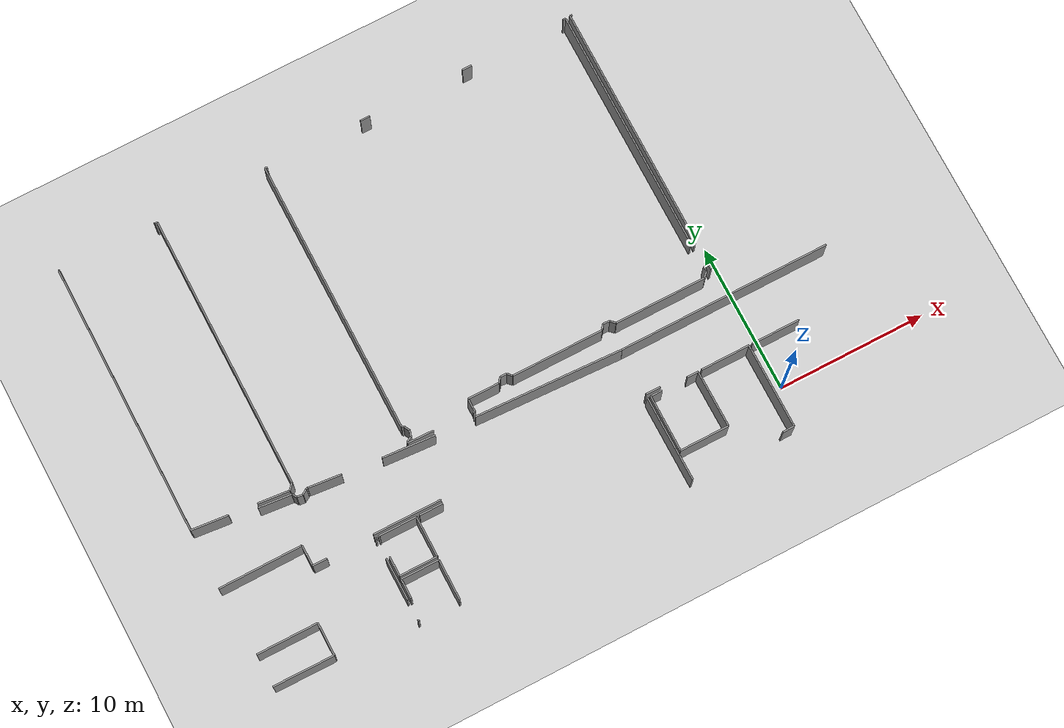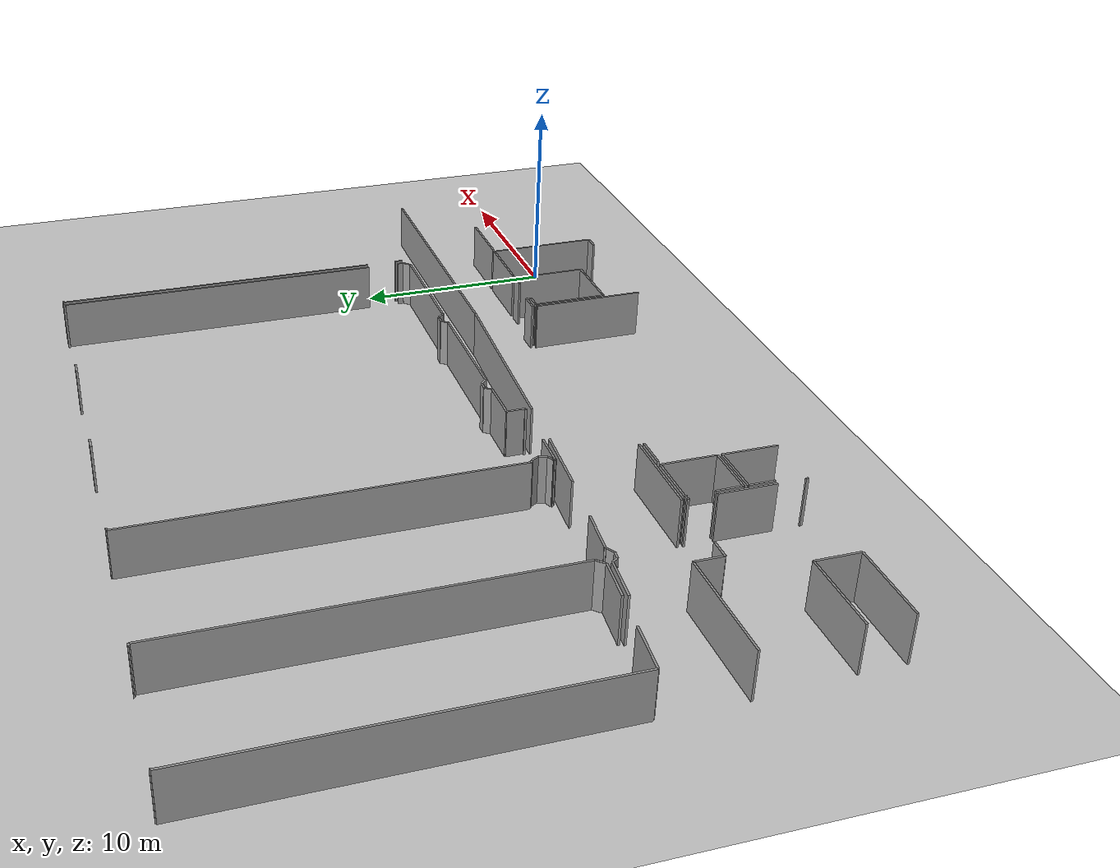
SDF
<sdf version="1.6">
 <world name="default">
  <model name="ground_plane">
   <static>1</static>
   <link name="link">
    <collision name="collision">
     <geometry><plane><normal>0 0 1</normal><size>100 100</size></plane></geometry>
     <surface><friction><ode><mu>100</mu><mu2>50</mu2></ode></friction></surface>
    </collision>
    <visual name="visual">
     <cast_shadows>0</cast_shadows>
     <geometry><plane><normal>0 0 1</normal><size>100 100</size></plane></geometry>
     <material>
      <script><uri>file://media/materials/scripts/gazebo.material</uri><name>Gazebo/Grey</name></script>
     </material>
    </visual>
   </link>
  </model>
  <model name="50041170">
   <static>1</static>
   <link name="Wall_58">
    <collision name="Wall_58_Collision">
     <geometry><box><size>2.21725746565 0.1 2.5</size></box></geometry>
     <pose>1.10862873282 0 1.25 0 0 0</pose>
    </collision>
    <visual name="Wall_58_Visual">
     <pose>1.10862873282 0 1.25 0 0 0</pose>
     <geometry><box><size>2.21725746565 0.1 2.5</size></box></geometry>
     <material>
      <script><uri>file://media/materials/scripts/gazebo.material</uri><name>Gazebo/Grey</name></script>
      <ambient>1 1 1 1</ambient>
     </material>
    </visual>
    <pose>34.1700358605 -29.3304560312 0 0 0 1.57079632679</pose>
   </link>
   <link name="Wall_59">
    <collision name="Wall_59_Collision">
     <geometry><box><size>4.13925295928 0.1 2.5</size></box></geometry>
     <pose>2.06962647964 0 1.25 0 0 0</pose>
    </collision>
    <visual name="Wall_59_Visual">
     <pose>2.06962647964 0 1.25 0 0 0</pose>
     <geometry><box><size>4.13925295928 0.1 2.5</size></box></geometry>
     <material>
      <script><uri>file://media/materials/scripts/gazebo.material</uri><name>Gazebo/Grey</name></script>
      <ambient>1 1 1 1</ambient>
     </material>
    </visual>
    <pose>34.1700358605 -27.1131985656 0 0 0 3.14159265359</pose>
   </link>
   <link name="Wall_60">
    <collision name="Wall_60_Collision">
     <geometry><box><size>4.1393488871 0.1 2.5</size></box></geometry>
     <pose>2.06967444355 0 1.25 0 0 0</pose>
    </collision>
    <visual name="Wall_60_Visual">
     <pose>2.06967444355 0 1.25 0 0 0</pose>
     <geometry><box><size>4.1393488871 0.1 2.5</size></box></geometry>
     <material>
      <script><uri>file://media/materials/scripts/gazebo.material</uri><name>Gazebo/Grey</name></script>
      <ambient>1 1 1 1</ambient>
     </material>
    </visual>
    <pose>30.0307829012 -29.3022753959 0 0 0 -0.0068080400556</pose>
   </link>
   <link name="Wall_72">
    <collision name="Wall_72_Collision">
     <geometry><box><size>2.22257233107 0.1 2.5</size></box></geometry>
     <pose>1.11128616553 0 1.25 0 0 0</pose>
    </collision>
    <visual name="Wall_72_Visual">
     <pose>1.11128616553 0 1.25 0 0 0</pose>
     <geometry><box><size>2.22257233107 0.1 2.5</size></box></geometry>
     <material>
      <script><uri>file://media/materials/scripts/gazebo.material</uri><name>Gazebo/Grey</name></script>
      <ambient>1 1 1 1</ambient>
     </material>
    </visual>
    <pose>34.13246168 -19.114848783 0 0 0 -0.0949517063428</pose>
   </link>
   <link name="Wall_73">
    <collision name="Wall_73_Collision">
     <geometry><box><size>0.346281394295 0.1 2.5</size></box></geometry>
     <pose>0.173140697147 0 1.25 0 0 0</pose>
    </collision>
    <visual name="Wall_73_Visual">
     <pose>0.173140697147 0 1.25 0 0 0</pose>
     <geometry><box><size>0.346281394295 0.1 2.5</size></box></geometry>
     <material>
      <script><uri>file://media/materials/scripts/gazebo.material</uri><name>Gazebo/Grey</name></script>
      <ambient>1 1 1 1</ambient>
     </material>
    </visual>
    <pose>36.3450223731 -19.325568849 0 0 0 -0.994282795744</pose>
   </link>
   <link name="Wall_74">
    <collision name="Wall_74_Collision">
     <geometry><box><size>0.387981293824 0.1 2.5</size></box></geometry>
     <pose>0.193990646912 0 1.25 0 0 0</pose>
    </collision>
    <visual name="Wall_74_Visual">
     <pose>0.193990646912 0 1.25 0 0 0</pose>
     <geometry><box><size>0.387981293824 0.1 2.5</size></box></geometry>
     <material>
      <script><uri>file://media/materials/scripts/gazebo.material</uri><name>Gazebo/Grey</name></script>
      <ambient>1 1 1 1</ambient>
     </material>
    </visual>
    <pose>36.533781854 -19.6158801688 0 0 0 -0.131578601703</pose>
   </link>
   <link name="Wall_75">
    <collision name="Wall_75_Collision">
     <geometry><box><size>0.400794860855 0.1 2.5</size></box></geometry>
     <pose>0.200397430428 0 1.25 0 0 0</pose>
    </collision>
    <visual name="Wall_75_Visual">
     <pose>0.200397430428 0 1.25 0 0 0</pose>
     <geometry><box><size>0.400794860855 0.1 2.5</size></box></geometry>
     <material>
      <script><uri>file://media/materials/scripts/gazebo.material</uri><name>Gazebo/Grey</name></script>
      <ambient>1 1 1 1</ambient>
     </material>
    </visual>
    <pose>36.9184094443 -19.6667830281 0 0 0 0.552858426288</pose>
   </link>
   <link name="Wall_76">
    <collision name="Wall_76_Collision">
     <geometry><box><size>0.114805802521 0.1 2.5</size></box></geometry>
     <pose>0.0574029012604 0 1.25 0 0 0</pose>
    </collision>
    <visual name="Wall_76_Visual">
     <pose>0.0574029012604 0 1.25 0 0 0</pose>
     <geometry><box><size>0.114805802521 0.1 2.5</size></box></geometry>
     <material>
      <script><uri>file://media/materials/scripts/gazebo.material</uri><name>Gazebo/Grey</name></script>
      <ambient>1 1 1 1</ambient>
     </material>
    </visual>
    <pose>37.2594966837 -19.4563168417 0 0 0 0.321750554397</pose>
   </link>
   <link name="Wall_77">
    <collision name="Wall_77_Collision">
     <geometry><box><size>2.24051099909 0.1 2.5</size></box></geometry>
     <pose>1.12025549955 0 1.25 0 0 0</pose>
    </collision>
    <visual name="Wall_77_Visual">
     <pose>1.12025549955 0 1.25 0 0 0</pose>
     <geometry><box><size>2.24051099909 0.1 2.5</size></box></geometry>
     <material>
      <script><uri>file://media/materials/scripts/gazebo.material</uri><name>Gazebo/Grey</name></script>
      <ambient>1 1 1 1</ambient>
     </material>
    </visual>
    <pose>37.3684110311 -19.4200120593 0 0 0 -0.0982874534732</pose>
   </link>
   <link name="Wall_78">
    <collision name="Wall_78_Collision">
     <geometry><box><size>3.54983821203 0.1 2.5</size></box></geometry>
     <pose>1.77491910601 0 1.25 0 0 0</pose>
    </collision>
    <visual name="Wall_78_Visual">
     <pose>1.77491910601 0 1.25 0 0 0</pose>
     <geometry><box><size>3.54983821203 0.1 2.5</size></box></geometry>
     <material>
      <script><uri>file://media/materials/scripts/gazebo.material</uri><name>Gazebo/Grey</name></script>
      <ambient>1 1 1 1</ambient>
     </material>
    </visual>
    <pose>42.238456412 -19.8772492146 0 0 0 -0.067529148442</pose>
   </link>
   <link name="Wall_79">
    <collision name="Wall_79_Collision">
     <geometry><box><size>9.99218280574 0.1 2.5</size></box></geometry>
     <pose>4.99609140287 0 1.25 0 0 0</pose>
    </collision>
    <visual name="Wall_79_Visual">
     <pose>4.99609140287 0 1.25 0 0 0</pose>
     <geometry><box><size>9.99218280574 0.1 2.5</size></box></geometry>
     <material>
      <script><uri>file://media/materials/scripts/gazebo.material</uri><name>Gazebo/Grey</name></script>
      <ambient>1 1 1 1</ambient>
     </material>
    </visual>
    <pose>48.4621878074 -20.2406778585 0 0 0 -0.0442113070372</pose>
   </link>
   <link name="Wall_80">
    <collision name="Wall_80_Collision">
     <geometry><box><size>14.4006949301 0.1 2.5</size></box></geometry>
     <pose>7.20034746504 0 1.25 0 0 0</pose>
    </collision>
    <visual name="Wall_80_Visual">
     <pose>7.20034746504 0 1.25 0 0 0</pose>
     <geometry><box><size>14.4006949301 0.1 2.5</size></box></geometry>
     <material>
      <script><uri>file://media/materials/scripts/gazebo.material</uri><name>Gazebo/Grey</name></script>
      <ambient>1 1 1 1</ambient>
     </material>
    </visual>
    <pose>58.4446066453 -20.6823014186 0 0 0 0.0011459292441</pose>
   </link>
   <link name="Wall_96">
    <collision name="Wall_96_Collision">
     <geometry><box><size>1.00993303926 0.1 2.5</size></box></geometry>
     <pose>0.504966519628 0 1.25 0 0 0</pose>
    </collision>
    <visual name="Wall_96_Visual">
     <pose>0.504966519628 0 1.25 0 0 0</pose>
     <geometry><box><size>1.00993303926 0.1 2.5</size></box></geometry>
     <material>
      <script><uri>file://media/materials/scripts/gazebo.material</uri><name>Gazebo/Grey</name></script>
      <ambient>1 1 1 1</ambient>
     </material>
    </visual>
    <pose>59.4224239155 -23.855542509 0 0 0 3.14159265359</pose>
   </link>
   <link name="Wall_97">
    <collision name="Wall_97_Collision">
     <geometry><box><size>4.6459966361 0.1 2.5</size></box></geometry>
     <pose>2.32299831805 0 1.25 0 0 0</pose>
    </collision>
    <visual name="Wall_97_Visual">
     <pose>2.32299831805 0 1.25 0 0 0</pose>
     <geometry><box><size>4.6459966361 0.1 2.5</size></box></geometry>
     <material>
      <script><uri>file://media/materials/scripts/gazebo.material</uri><name>Gazebo/Grey</name></script>
      <ambient>1 1 1 1</ambient>
     </material>
    </visual>
    <pose>44.2457554505 -23.855542509 0 0 0 3.14159265359</pose>
   </link>
   <link name="Wall_98">
    <collision name="Wall_98_Collision">
     <geometry><box><size>0.988607153058 0.1 2.5</size></box></geometry>
     <pose>0.494303576529 0 1.25 0 0 0</pose>
    </collision>
    <visual name="Wall_98_Visual">
     <pose>0.494303576529 0 1.25 0 0 0</pose>
     <geometry><box><size>0.988607153058 0.1 2.5</size></box></geometry>
     <material>
      <script><uri>file://media/materials/scripts/gazebo.material</uri><name>Gazebo/Grey</name></script>
      <ambient>1 1 1 1</ambient>
     </material>
    </visual>
    <pose>36.4544444797 -23.855542509 0 0 0 3.14159265359</pose>
   </link>
   <link name="Wall_99">
    <collision name="Wall_99_Collision">
     <geometry><box><size>1.41677509441 0.1 2.5</size></box></geometry>
     <pose>0.708387547206 0 1.25 0 0 0</pose>
    </collision>
    <visual name="Wall_99_Visual">
     <pose>0.708387547206 0 1.25 0 0 0</pose>
     <geometry><box><size>1.41677509441 0.1 2.5</size></box></geometry>
     <material>
      <script><uri>file://media/materials/scripts/gazebo.material</uri><name>Gazebo/Grey</name></script>
      <ambient>1 1 1 1</ambient>
     </material>
    </visual>
    <pose>35.4658373266 -23.855542509 0 0 0 1.57079632679</pose>
   </link>
   <link name="Wall_100">
    <collision name="Wall_100_Collision">
     <geometry><box><size>5.68164330396 0.1 2.5</size></box></geometry>
     <pose>2.84082165198 0 1.25 0 0 0</pose>
    </collision>
    <visual name="Wall_100_Visual">
     <pose>2.84082165198 0 1.25 0 0 0</pose>
     <geometry><box><size>5.68164330396 0.1 2.5</size></box></geometry>
     <material>
      <script><uri>file://media/materials/scripts/gazebo.material</uri><name>Gazebo/Grey</name></script>
      <ambient>1 1 1 1</ambient>
     </material>
    </visual>
    <pose>35.4658373266 -22.4387674146 0 0 0 -3.13656566166</pose>
   </link>
   <link name="Wall_101">
    <collision name="Wall_101_Collision">
     <geometry><box><size>2.11911192681 0.1 2.5</size></box></geometry>
     <pose>1.05955596341 0 1.25 0 0 0</pose>
    </collision>
    <visual name="Wall_101_Visual">
     <pose>1.05955596341 0 1.25 0 0 0</pose>
     <geometry><box><size>2.11911192681 0.1 2.5</size></box></geometry>
     <material>
      <script><uri>file://media/materials/scripts/gazebo.material</uri><name>Gazebo/Grey</name></script>
      <ambient>1 1 1 1</ambient>
     </material>
    </visual>
    <pose>36.3247120053 -19.0663577798 0 0 0 3.04879055945</pose>
   </link>
   <link name="Wall_102">
    <collision name="Wall_102_Collision">
     <geometry><box><size>2.47869027625 0.1 2.5</size></box></geometry>
     <pose>1.23934513813 0 1.25 0 0 0</pose>
    </collision>
    <visual name="Wall_102_Visual">
     <pose>1.23934513813 0 1.25 0 0 0</pose>
     <geometry><box><size>2.47869027625 0.1 2.5</size></box></geometry>
     <material>
      <script><uri>file://media/materials/scripts/gazebo.material</uri><name>Gazebo/Grey</name></script>
      <ambient>1 1 1 1</ambient>
     </material>
    </visual>
    <pose>32.3464187109 -18.6954396877 0 0 0 3.04634719519</pose>
   </link>
   <link name="Wall_103">
    <collision name="Wall_103_Collision">
     <geometry><box><size>18.4537463108 0.1 2.5</size></box></geometry>
     <pose>9.22687315541 0 1.25 0 0 0</pose>
    </collision>
    <visual name="Wall_103_Visual">
     <pose>9.22687315541 0 1.25 0 0 0</pose>
     <geometry><box><size>18.4537463108 0.1 2.5</size></box></geometry>
     <material>
      <script><uri>file://media/materials/scripts/gazebo.material</uri><name>Gazebo/Grey</name></script>
      <ambient>1 1 1 1</ambient>
     </material>
    </visual>
    <pose>29.8789629018 -18.4597124814 0 0 0 1.57079632679</pose>
   </link>
   <link name="Wall_104">
    <collision name="Wall_104_Collision">
     <geometry><box><size>0.0694360699438 0.1 2.5</size></box></geometry>
     <pose>0.0347180349719 0 1.25 0 0 0</pose>
    </collision>
    <visual name="Wall_104_Visual">
     <pose>0.0347180349719 0 1.25 0 0 0</pose>
     <geometry><box><size>0.0694360699438 0.1 2.5</size></box></geometry>
     <material>
      <script><uri>file://media/materials/scripts/gazebo.material</uri><name>Gazebo/Grey</name></script>
      <ambient>1 1 1 1</ambient>
     </material>
    </visual>
    <pose>29.8789629018 -0.00596617054362 0 0 0 0.0</pose>
   </link>
   <link name="Wall_105">
    <collision name="Wall_105_Collision">
     <geometry><box><size>0.0512836787154 0.1 2.5</size></box></geometry>
     <pose>0.0256418393577 0 1.25 0 0 0</pose>
    </collision>
    <visual name="Wall_105_Visual">
     <pose>0.0256418393577 0 1.25 0 0 0</pose>
     <geometry><box><size>0.0512836787154 0.1 2.5</size></box></geometry>
     <material>
      <script><uri>file://media/materials/scripts/gazebo.material</uri><name>Gazebo/Grey</name></script>
      <ambient>1 1 1 1</ambient>
     </material>
    </visual>
    <pose>36.4949382755 -0.00596617054362 0 0 0 -1.57079632679</pose>
   </link>
   <link name="Wall_106">
    <collision name="Wall_106_Collision">
     <geometry><box><size>0.170226270191 0.1 2.5</size></box></geometry>
     <pose>0.0851131350957 0 1.25 0 0 0</pose>
    </collision>
    <visual name="Wall_106_Visual">
     <pose>0.0851131350957 0 1.25 0 0 0</pose>
     <geometry><box><size>0.170226270191 0.1 2.5</size></box></geometry>
     <material>
      <script><uri>file://media/materials/scripts/gazebo.material</uri><name>Gazebo/Grey</name></script>
      <ambient>1 1 1 1</ambient>
     </material>
    </visual>
    <pose>36.4949382755 -0.057249849259 0 0 0 0.0</pose>
   </link>
   <link name="Wall_107">
    <collision name="Wall_107_Collision">
     <geometry><box><size>18.6318428485 0.1 2.5</size></box></geometry>
     <pose>9.31592142426 0 1.25 0 0 0</pose>
    </collision>
    <visual name="Wall_107_Visual">
     <pose>9.31592142426 0 1.25 0 0 0</pose>
     <geometry><box><size>18.6318428485 0.1 2.5</size></box></geometry>
     <material>
      <script><uri>file://media/materials/scripts/gazebo.material</uri><name>Gazebo/Grey</name></script>
      <ambient>1 1 1 1</ambient>
     </material>
    </visual>
    <pose>36.6651645457 -0.057249849259 0 0 0 -1.57079632679</pose>
   </link>
   <link name="Wall_108">
    <collision name="Wall_108_Collision">
     <geometry><box><size>0.508170123458 0.1 2.5</size></box></geometry>
     <pose>0.254085061729 0 1.25 0 0 0</pose>
    </collision>
    <visual name="Wall_108_Visual">
     <pose>0.254085061729 0 1.25 0 0 0</pose>
     <geometry><box><size>0.508170123458 0.1 2.5</size></box></geometry>
     <material>
      <script><uri>file://media/materials/scripts/gazebo.material</uri><name>Gazebo/Grey</name></script>
      <ambient>1 1 1 1</ambient>
     </material>
    </visual>
    <pose>36.6651645457 -18.6890926978 0 0 0 -2.30494827654</pose>
   </link>
   <link name="Wall_109">
    <collision name="Wall_109_Collision">
     <geometry><box><size>6.21839992384 0.1 2.5</size></box></geometry>
     <pose>3.10919996192 0 1.25 0 0 0</pose>
    </collision>
    <visual name="Wall_109_Visual">
     <pose>3.10919996192 0 1.25 0 0 0</pose>
     <geometry><box><size>6.21839992384 0.1 2.5</size></box></geometry>
     <material>
      <script><uri>file://media/materials/scripts/gazebo.material</uri><name>Gazebo/Grey</name></script>
      <ambient>1 1 1 1</ambient>
     </material>
    </visual>
    <pose>65.140046333 -19.0282758402 0 0 0 3.14159265359</pose>
   </link>
   <link name="Wall_110">
    <collision name="Wall_110_Collision">
     <geometry><box><size>0.422968381256 0.1 2.5</size></box></geometry>
     <pose>0.211484190628 0 1.25 0 0 0</pose>
    </collision>
    <visual name="Wall_110_Visual">
     <pose>0.211484190628 0 1.25 0 0 0</pose>
     <geometry><box><size>0.422968381256 0.1 2.5</size></box></geometry>
     <material>
      <script><uri>file://media/materials/scripts/gazebo.material</uri><name>Gazebo/Grey</name></script>
      <ambient>1 1 1 1</ambient>
     </material>
    </visual>
    <pose>58.9216464092 -19.0282758402 0 0 0 2.33348559478</pose>
   </link>
   <link name="Wall_111">
    <collision name="Wall_111_Collision">
     <geometry><box><size>0.442570779755 0.1 2.5</size></box></geometry>
     <pose>0.221285389877 0 1.25 0 0 0</pose>
    </collision>
    <visual name="Wall_111_Visual">
     <pose>0.221285389877 0 1.25 0 0 0</pose>
     <geometry><box><size>0.442570779755 0.1 2.5</size></box></geometry>
     <material>
      <script><uri>file://media/materials/scripts/gazebo.material</uri><name>Gazebo/Grey</name></script>
      <ambient>1 1 1 1</ambient>
     </material>
    </visual>
    <pose>58.6294309924 -18.7224778649 0 0 0 3.10400989911</pose>
   </link>
   <link name="Wall_112">
    <collision name="Wall_112_Collision">
     <geometry><box><size>0.414586626626 0.1 2.5</size></box></geometry>
     <pose>0.207293313313 0 1.25 0 0 0</pose>
    </collision>
    <visual name="Wall_112_Visual">
     <pose>0.207293313313 0 1.25 0 0 0</pose>
     <geometry><box><size>0.414586626626 0.1 2.5</size></box></geometry>
     <material>
      <script><uri>file://media/materials/scripts/gazebo.material</uri><name>Gazebo/Grey</name></script>
      <ambient>1 1 1 1</ambient>
     </material>
    </visual>
    <pose>58.1871727333 -18.7058487512 0 0 0 -2.27078780855</pose>
   </link>
   <link name="Wall_113">
    <collision name="Wall_113_Collision">
     <geometry><box><size>6.20291326838 0.1 2.5</size></box></geometry>
     <pose>3.10145663419 0 1.25 0 0 0</pose>
    </collision>
    <visual name="Wall_113_Visual">
     <pose>3.10145663419 0 1.25 0 0 0</pose>
     <geometry><box><size>6.20291326838 0.1 2.5</size></box></geometry>
     <material>
      <script><uri>file://media/materials/scripts/gazebo.material</uri><name>Gazebo/Grey</name></script>
      <ambient>1 1 1 1</ambient>
     </material>
    </visual>
    <pose>57.9200913967 -19.0229443686 0 0 0 3.14159265359</pose>
   </link>
   <link name="Wall_114">
    <collision name="Wall_114_Collision">
     <geometry><box><size>0.402027481401 0.1 2.5</size></box></geometry>
     <pose>0.2010137407 0 1.25 0 0 0</pose>
    </collision>
    <visual name="Wall_114_Visual">
     <pose>0.2010137407 0 1.25 0 0 0</pose>
     <geometry><box><size>0.402027481401 0.1 2.5</size></box></geometry>
     <material>
      <script><uri>file://media/materials/scripts/gazebo.material</uri><name>Gazebo/Grey</name></script>
      <ambient>1 1 1 1</ambient>
     </material>
    </visual>
    <pose>51.7171781283 -19.0229443686 0 0 0 2.32694217114</pose>
   </link>
   <link name="Wall_115">
    <collision name="Wall_115_Collision">
     <geometry><box><size>0.450234207811 0.1 2.5</size></box></geometry>
     <pose>0.225117103905 0 1.25 0 0 0</pose>
    </collision>
    <visual name="Wall_115_Visual">
     <pose>0.225117103905 0 1.25 0 0 0</pose>
     <geometry><box><size>0.450234207811 0.1 2.5</size></box></geometry>
     <material>
      <script><uri>file://media/materials/scripts/gazebo.material</uri><name>Gazebo/Grey</name></script>
      <ambient>1 1 1 1</ambient>
     </material>
    </visual>
    <pose>51.4413379455 -18.7304750722 0 0 0 3.10944576297</pose>
   </link>
   <link name="Wall_116">
    <collision name="Wall_116_Collision">
     <geometry><box><size>0.403508077177 0.1 2.5</size></box></geometry>
     <pose>0.201754038589 0 1.25 0 0 0</pose>
    </collision>
    <visual name="Wall_116_Visual">
     <pose>0.201754038589 0 1.25 0 0 0</pose>
     <geometry><box><size>0.403508077177 0.1 2.5</size></box></geometry>
     <material>
      <script><uri>file://media/materials/scripts/gazebo.material</uri><name>Gazebo/Grey</name></script>
      <ambient>1 1 1 1</ambient>
     </material>
    </visual>
    <pose>50.9913363587 -18.7160039351 0 0 0 -2.22883202741</pose>
   </link>
   <link name="Wall_117">
    <collision name="Wall_117_Collision">
     <geometry><box><size>2.13373107804 0.1 2.5</size></box></geometry>
     <pose>1.06686553902 0 1.25 0 0 0</pose>
    </collision>
    <visual name="Wall_117_Visual">
     <pose>1.06686553902 0 1.25 0 0 0</pose>
     <geometry><box><size>2.13373107804 0.1 2.5</size></box></geometry>
     <material>
      <script><uri>file://media/materials/scripts/gazebo.material</uri><name>Gazebo/Grey</name></script>
      <ambient>1 1 1 1</ambient>
     </material>
    </visual>
    <pose>50.7445653899 -19.0352575291 0 0 0 3.14159265359</pose>
   </link>
   <link name="Wall_118">
    <collision name="Wall_118_Collision">
     <geometry><box><size>0.921329059693 0.1 2.5</size></box></geometry>
     <pose>0.460664529847 0 1.25 0 0 0</pose>
    </collision>
    <visual name="Wall_118_Visual">
     <pose>0.460664529847 0 1.25 0 0 0</pose>
     <geometry><box><size>0.921329059693 0.1 2.5</size></box></geometry>
     <material>
      <script><uri>file://media/materials/scripts/gazebo.material</uri><name>Gazebo/Grey</name></script>
      <ambient>1 1 1 1</ambient>
     </material>
    </visual>
    <pose>48.6108343118 -19.0352575291 0 0 0 -1.57079632679</pose>
   </link>
   <link name="Wall_119">
    <collision name="Wall_119_Collision">
     <geometry><box><size>0.12477433216 0.1 2.5</size></box></geometry>
     <pose>0.0623871660802 0 1.25 0 0 0</pose>
    </collision>
    <visual name="Wall_119_Visual">
     <pose>0.0623871660802 0 1.25 0 0 0</pose>
     <geometry><box><size>0.12477433216 0.1 2.5</size></box></geometry>
     <material>
      <script><uri>file://media/materials/scripts/gazebo.material</uri><name>Gazebo/Grey</name></script>
      <ambient>1 1 1 1</ambient>
     </material>
    </visual>
    <pose>48.6108343118 -19.9565865888 0 0 0 3.09783242063</pose>
   </link>
   <link name="Wall_120">
    <collision name="Wall_120_Collision">
     <geometry><box><size>1.7570728711 0.1 2.5</size></box></geometry>
     <pose>0.878536435549 0 1.25 0 0 0</pose>
    </collision>
    <visual name="Wall_120_Visual">
     <pose>0.878536435549 0 1.25 0 0 0</pose>
     <geometry><box><size>1.7570728711 0.1 2.5</size></box></geometry>
     <material>
      <script><uri>file://media/materials/scripts/gazebo.material</uri><name>Gazebo/Grey</name></script>
      <ambient>1 1 1 1</ambient>
     </material>
    </visual>
    <pose>45.8165085208 -19.8191107867 0 0 0 3.11269061422</pose>
   </link>
   <link name="Wall_121">
    <collision name="Wall_121_Collision">
     <geometry><box><size>0.0715940465234 0.1 2.5</size></box></geometry>
     <pose>0.0357970232617 0 1.25 0 0 0</pose>
    </collision>
    <visual name="Wall_121_Visual">
     <pose>0.0357970232617 0 1.25 0 0 0</pose>
     <geometry><box><size>0.0715940465234 0.1 2.5</size></box></geometry>
     <material>
      <script><uri>file://media/materials/scripts/gazebo.material</uri><name>Gazebo/Grey</name></script>
      <ambient>1 1 1 1</ambient>
     </material>
    </visual>
    <pose>44.0601694646 -19.7683348672 0 0 0 1.57079632679</pose>
   </link>
   <link name="Wall_122">
    <collision name="Wall_122_Collision">
     <geometry><box><size>0.38965566438 0.1 2.5</size></box></geometry>
     <pose>0.19482783219 0 1.25 0 0 0</pose>
    </collision>
    <visual name="Wall_122_Visual">
     <pose>0.19482783219 0 1.25 0 0 0</pose>
     <geometry><box><size>0.38965566438 0.1 2.5</size></box></geometry>
     <material>
      <script><uri>file://media/materials/scripts/gazebo.material</uri><name>Gazebo/Grey</name></script>
      <ambient>1 1 1 1</ambient>
     </material>
    </visual>
    <pose>44.0601694646 -19.6967408207 0 0 0 0.434796849523</pose>
   </link>
   <link name="Wall_123">
    <collision name="Wall_123_Collision">
     <geometry><box><size>0.433385505246 0.1 2.5</size></box></geometry>
     <pose>0.216692752623 0 1.25 0 0 0</pose>
    </collision>
    <visual name="Wall_123_Visual">
     <pose>0.216692752623 0 1.25 0 0 0</pose>
     <geometry><box><size>0.433385505246 0.1 2.5</size></box></geometry>
     <material>
      <script><uri>file://media/materials/scripts/gazebo.material</uri><name>Gazebo/Grey</name></script>
      <ambient>1 1 1 1</ambient>
     </material>
    </visual>
    <pose>44.4135698645 -19.5326076608 0 0 0 1.29064593564</pose>
   </link>
   <link name="Wall_124">
    <collision name="Wall_124_Collision">
     <geometry><box><size>0.424320008018 0.1 2.5</size></box></geometry>
     <pose>0.212160004009 0 1.25 0 0 0</pose>
    </collision>
    <visual name="Wall_124_Visual">
     <pose>0.212160004009 0 1.25 0 0 0</pose>
     <geometry><box><size>0.424320008018 0.1 2.5</size></box></geometry>
     <material>
      <script><uri>file://media/materials/scripts/gazebo.material</uri><name>Gazebo/Grey</name></script>
      <ambient>1 1 1 1</ambient>
     </material>
    </visual>
    <pose>44.5334010346 -19.116118181 0 0 0 2.10085190877</pose>
   </link>
   <link name="Wall_125">
    <collision name="Wall_125_Collision">
     <geometry><box><size>0.147776682041 0.1 2.5</size></box></geometry>
     <pose>0.0738883410203 0 1.25 0 0 0</pose>
    </collision>
    <visual name="Wall_125_Visual">
     <pose>0.0738883410203 0 1.25 0 0 0</pose>
     <geometry><box><size>0.147776682041 0.1 2.5</size></box></geometry>
     <material>
      <script><uri>file://media/materials/scripts/gazebo.material</uri><name>Gazebo/Grey</name></script>
      <ambient>1 1 1 1</ambient>
     </material>
    </visual>
    <pose>44.3188727746 -18.7500238012 0 0 0 2.79267487179</pose>
   </link>
   <link name="Wall_126">
    <collision name="Wall_126_Collision">
     <geometry><box><size>18.6620545206 0.1 2.5</size></box></geometry>
     <pose>9.33102726032 0 1.25 0 0 0</pose>
    </collision>
    <visual name="Wall_126_Visual">
     <pose>9.33102726032 0 1.25 0 0 0</pose>
     <geometry><box><size>18.6620545206 0.1 2.5</size></box></geometry>
     <material>
      <script><uri>file://media/materials/scripts/gazebo.material</uri><name>Gazebo/Grey</name></script>
      <ambient>1 1 1 1</ambient>
     </material>
    </visual>
    <pose>44.1800006347 -18.6995017613 0 0 0 1.57079632679</pose>
   </link>
   <link name="Wall_127">
    <collision name="Wall_127_Collision">
     <geometry><box><size>0.164133159849 0.1 2.5</size></box></geometry>
     <pose>0.0820665799245 0 1.25 0 0 0</pose>
    </collision>
    <visual name="Wall_127_Visual">
     <pose>0.0820665799245 0 1.25 0 0 0</pose>
     <geometry><box><size>0.164133159849 0.1 2.5</size></box></geometry>
     <material>
      <script><uri>file://media/materials/scripts/gazebo.material</uri><name>Gazebo/Grey</name></script>
      <ambient>1 1 1 1</ambient>
     </material>
    </visual>
    <pose>44.1800006347 -0.0374472406461 0 0 0 0.0</pose>
   </link>
   <link name="Wall_128">
    <collision name="Wall_128_Collision">
     <geometry><box><size>0.664022087525 0.1 2.5</size></box></geometry>
     <pose>0.332011043762 0 1.25 0 0 0</pose>
    </collision>
    <visual name="Wall_128_Visual">
     <pose>0.332011043762 0 1.25 0 0 0</pose>
     <geometry><box><size>0.664022087525 0.1 2.5</size></box></geometry>
     <material>
      <script><uri>file://media/materials/scripts/gazebo.material</uri><name>Gazebo/Grey</name></script>
      <ambient>1 1 1 1</ambient>
     </material>
    </visual>
    <pose>50.8734092856 -0.0374472406461 0 0 0 0.0</pose>
   </link>
   <link name="Wall_129">
    <collision name="Wall_129_Collision">
     <geometry><box><size>0.64764685348 0.1 2.5</size></box></geometry>
     <pose>0.32382342674 0 1.25 0 0 0</pose>
    </collision>
    <visual name="Wall_129_Visual">
     <pose>0.32382342674 0 1.25 0 0 0</pose>
     <geometry><box><size>0.64764685348 0.1 2.5</size></box></geometry>
     <material>
      <script><uri>file://media/materials/scripts/gazebo.material</uri><name>Gazebo/Grey</name></script>
      <ambient>1 1 1 1</ambient>
     </material>
    </visual>
    <pose>58.0900637872 -0.0374472406461 0 0 0 0.0</pose>
   </link>
   <link name="Wall_130">
    <collision name="Wall_130_Collision">
     <geometry><box><size>0.191932975786 0.1 2.5</size></box></geometry>
     <pose>0.0959664878931 0 1.25 0 0 0</pose>
    </collision>
    <visual name="Wall_130_Visual">
     <pose>0.0959664878931 0 1.25 0 0 0</pose>
     <geometry><box><size>0.191932975786 0.1 2.5</size></box></geometry>
     <material>
      <script><uri>file://media/materials/scripts/gazebo.material</uri><name>Gazebo/Grey</name></script>
      <ambient>1 1 1 1</ambient>
     </material>
    </visual>
    <pose>65.2691441084 -0.0374472406461 0 0 0 0.0</pose>
   </link>
   <link name="Wall_131">
    <collision name="Wall_131_Collision">
     <geometry><box><size>16.6680841611 0.1 2.5</size></box></geometry>
     <pose>8.33404208054 0 1.25 0 0 0</pose>
    </collision>
    <visual name="Wall_131_Visual">
     <pose>8.33404208054 0 1.25 0 0 0</pose>
     <geometry><box><size>16.6680841611 0.1 2.5</size></box></geometry>
     <material>
      <script><uri>file://media/materials/scripts/gazebo.material</uri><name>Gazebo/Grey</name></script>
      <ambient>1 1 1 1</ambient>
     </material>
    </visual>
    <pose>65.4610770842 -0.0374472406461 0 0 0 -1.57079632679</pose>
   </link>
   <link name="Wall_132">
    <collision name="Wall_132_Collision">
     <geometry><box><size>0.331058995271 0.1 2.5</size></box></geometry>
     <pose>0.165529497636 0 1.25 0 0 0</pose>
    </collision>
    <visual name="Wall_132_Visual">
     <pose>0.165529497636 0 1.25 0 0 0</pose>
     <geometry><box><size>0.331058995271 0.1 2.5</size></box></geometry>
     <material>
      <script><uri>file://media/materials/scripts/gazebo.material</uri><name>Gazebo/Grey</name></script>
      <ambient>1 1 1 1</ambient>
     </material>
    </visual>
    <pose>65.4610770842 -18.3599377995 0 0 0 -1.57079632679</pose>
   </link>
   <link name="Wall_133">
    <collision name="Wall_133_Collision">
     <geometry><box><size>0.465637087944 0.1 2.5</size></box></geometry>
     <pose>0.232818543972 0 1.25 0 0 0</pose>
    </collision>
    <visual name="Wall_133_Visual">
     <pose>0.232818543972 0 1.25 0 0 0</pose>
     <geometry><box><size>0.465637087944 0.1 2.5</size></box></geometry>
     <material>
      <script><uri>file://media/materials/scripts/gazebo.material</uri><name>Gazebo/Grey</name></script>
      <ambient>1 1 1 1</ambient>
     </material>
    </visual>
    <pose>65.4610770842 -18.6909967948 0 0 0 -2.33151766465</pose>
   </link>
   <link name="Wall_147">
    <collision name="Wall_147_Collision">
     <geometry><box><size>0.422582590207 0.1 2.5</size></box></geometry>
     <pose>0.211291295103 0 1.25 0 0 0</pose>
    </collision>
    <visual name="Wall_147_Visual">
     <pose>0.211291295103 0 1.25 0 0 0</pose>
     <geometry><box><size>0.422582590207 0.1 2.5</size></box></geometry>
     <material>
      <script><uri>file://media/materials/scripts/gazebo.material</uri><name>Gazebo/Grey</name></script>
      <ambient>1 1 1 1</ambient>
     </material>
    </visual>
    <pose>65.7842658119 -18.7218431659 0 0 0 1.57079632679</pose>
   </link>
   <link name="Wall_148">
    <collision name="Wall_148_Collision">
     <geometry><box><size>16.6840785757 0.1 2.5</size></box></geometry>
     <pose>8.34203928787 0 1.25 0 0 0</pose>
    </collision>
    <visual name="Wall_148_Visual">
     <pose>8.34203928787 0 1.25 0 0 0</pose>
     <geometry><box><size>16.6840785757 0.1 2.5</size></box></geometry>
     <material>
      <script><uri>file://media/materials/scripts/gazebo.material</uri><name>Gazebo/Grey</name></script>
      <ambient>1 1 1 1</ambient>
     </material>
    </visual>
    <pose>65.7842658119 -16.7021040272 0 0 0 1.57079632679</pose>
   </link>
   <link name="Wall_149">
    <collision name="Wall_149_Collision">
     <geometry><box><size>0.140014598077 0.1 2.5</size></box></geometry>
     <pose>0.0700072990384 0 1.25 0 0 0</pose>
    </collision>
    <visual name="Wall_149_Visual">
     <pose>0.0700072990384 0 1.25 0 0 0</pose>
     <geometry><box><size>0.140014598077 0.1 2.5</size></box></geometry>
     <material>
      <script><uri>file://media/materials/scripts/gazebo.material</uri><name>Gazebo/Grey</name></script>
      <ambient>1 1 1 1</ambient>
     </material>
    </visual>
    <pose>65.7842658119 -0.0180254514297 0 0 0 0.0</pose>
   </link>
   <link name="Wall_386">
    <collision name="Wall_386_Collision">
     <geometry><box><size>0.101678778839 0.1 2.5</size></box></geometry>
     <pose>0.0508393894196 0 1.25 0 0 0</pose>
    </collision>
    <visual name="Wall_386_Visual">
     <pose>0.0508393894196 0 1.25 0 0 0</pose>
     <geometry><box><size>0.101678778839 0.1 2.5</size></box></geometry>
     <material>
      <script><uri>file://media/materials/scripts/gazebo.material</uri><name>Gazebo/Grey</name></script>
      <ambient>1 1 1 1</ambient>
     </material>
    </visual>
    <pose>39.6267969915 -24.0866998826 0 0 0 -1.57079632679</pose>
   </link>
   <link name="Wall_387">
    <collision name="Wall_387_Collision">
     <geometry><box><size>2.85233727905 0.1 2.5</size></box></geometry>
     <pose>1.42616863952 0 1.25 0 0 0</pose>
    </collision>
    <visual name="Wall_387_Visual">
     <pose>1.42616863952 0 1.25 0 0 0</pose>
     <geometry><box><size>2.85233727905 0.1 2.5</size></box></geometry>
     <material>
      <script><uri>file://media/materials/scripts/gazebo.material</uri><name>Gazebo/Grey</name></script>
      <ambient>1 1 1 1</ambient>
     </material>
    </visual>
    <pose>39.6267969915 -25.5310209133 0 0 0 -1.57079632679</pose>
   </link>
   <link name="Wall_388">
    <collision name="Wall_388_Collision">
     <geometry><box><size>0.136672374044 0.1 2.5</size></box></geometry>
     <pose>0.068336187022 0 1.25 0 0 0</pose>
    </collision>
    <visual name="Wall_388_Visual">
     <pose>0.068336187022 0 1.25 0 0 0</pose>
     <geometry><box><size>0.136672374044 0.1 2.5</size></box></geometry>
     <material>
      <script><uri>file://media/materials/scripts/gazebo.material</uri><name>Gazebo/Grey</name></script>
      <ambient>1 1 1 1</ambient>
     </material>
    </visual>
    <pose>39.6267969915 -29.7314588556 0 0 0 -1.53549501294</pose>
   </link>
   <link name="Wall_389">
    <collision name="Wall_389_Collision">
     <geometry><box><size>2.57421217987 0.1 2.5</size></box></geometry>
     <pose>1.28710608994 0 1.25 0 0 0</pose>
    </collision>
    <visual name="Wall_389_Visual">
     <pose>1.28710608994 0 1.25 0 0 0</pose>
     <geometry><box><size>2.57421217987 0.1 2.5</size></box></geometry>
     <material>
      <script><uri>file://media/materials/scripts/gazebo.material</uri><name>Gazebo/Grey</name></script>
      <ambient>1 1 1 1</ambient>
     </material>
    </visual>
    <pose>42.4248040367 -26.8636349211 0 0 0 3.14159265359</pose>
   </link>
   <link name="Wall_390">
    <collision name="Wall_390_Collision">
     <geometry><box><size>1.33984957634 0.1 2.5</size></box></geometry>
     <pose>0.669924788169 0 1.25 0 0 0</pose>
    </collision>
    <visual name="Wall_390_Visual">
     <pose>0.669924788169 0 1.25 0 0 0</pose>
     <geometry><box><size>1.33984957634 0.1 2.5</size></box></geometry>
     <material>
      <script><uri>file://media/materials/scripts/gazebo.material</uri><name>Gazebo/Grey</name></script>
      <ambient>1 1 1 1</ambient>
     </material>
    </visual>
    <pose>39.8505918568 -26.8636349211 0 0 0 1.57079632679</pose>
   </link>
   <link name="Wall_391">
    <collision name="Wall_391_Collision">
     <geometry><box><size>0.104344514614 0.1 2.5</size></box></geometry>
     <pose>0.052172257307 0 1.25 0 0 0</pose>
    </collision>
    <visual name="Wall_391_Visual">
     <pose>0.052172257307 0 1.25 0 0 0</pose>
     <geometry><box><size>0.104344514614 0.1 2.5</size></box></geometry>
     <material>
      <script><uri>file://media/materials/scripts/gazebo.material</uri><name>Gazebo/Grey</name></script>
      <ambient>1 1 1 1</ambient>
     </material>
    </visual>
    <pose>39.8505918568 -24.1933293136 0 0 0 1.57079632679</pose>
   </link>
   <link name="Wall_392">
    <collision name="Wall_392_Collision">
     <geometry><box><size>2.5714195043 0.1 2.5</size></box></geometry>
     <pose>1.28570975215 0 1.25 0 0 0</pose>
    </collision>
    <visual name="Wall_392_Visual">
     <pose>1.28570975215 0 1.25 0 0 0</pose>
     <geometry><box><size>2.5714195043 0.1 2.5</size></box></geometry>
     <material>
      <script><uri>file://media/materials/scripts/gazebo.material</uri><name>Gazebo/Grey</name></script>
      <ambient>1 1 1 1</ambient>
     </material>
    </visual>
    <pose>39.8505918568 -24.088984799 0 0 0 0.0</pose>
   </link>
   <link name="Wall_393">
    <collision name="Wall_393_Collision">
     <geometry><box><size>2.77465152759 0.1 2.5</size></box></geometry>
     <pose>1.38732576379 0 1.25 0 0 0</pose>
    </collision>
    <visual name="Wall_393_Visual">
     <pose>1.38732576379 0 1.25 0 0 0</pose>
     <geometry><box><size>2.77465152759 0.1 2.5</size></box></geometry>
     <material>
      <script><uri>file://media/materials/scripts/gazebo.material</uri><name>Gazebo/Grey</name></script>
      <ambient>1 1 1 1</ambient>
     </material>
    </visual>
    <pose>42.4220113611 -24.088984799 0 0 0 -1.56978983066</pose>
   </link>
   <link name="Wall_396">
    <collision name="Wall_396_Collision">
     <geometry><box><size>1.32740947606 0.1 2.5</size></box></geometry>
     <pose>0.663704738028 0 1.25 0 0 0</pose>
    </collision>
    <visual name="Wall_396_Visual">
     <pose>0.663704738028 0 1.25 0 0 0</pose>
     <geometry><box><size>1.32740947606 0.1 2.5</size></box></geometry>
     <material>
      <script><uri>file://media/materials/scripts/gazebo.material</uri><name>Gazebo/Grey</name></script>
      <ambient>1 1 1 1</ambient>
     </material>
    </visual>
    <pose>39.8505918568 -28.404430199 0 0 0 1.57079632679</pose>
   </link>
   <link name="Wall_397">
    <collision name="Wall_397_Collision">
     <geometry><box><size>2.56926152772 0.1 2.5</size></box></geometry>
     <pose>1.28463076386 0 1.25 0 0 0</pose>
    </collision>
    <visual name="Wall_397_Visual">
     <pose>1.28463076386 0 1.25 0 0 0</pose>
     <geometry><box><size>2.56926152772 0.1 2.5</size></box></geometry>
     <material>
      <script><uri>file://media/materials/scripts/gazebo.material</uri><name>Gazebo/Grey</name></script>
      <ambient>1 1 1 1</ambient>
     </material>
    </visual>
    <pose>39.8505918568 -27.0770207229 0 0 0 0.0</pose>
   </link>
   <link name="Wall_398">
    <collision name="Wall_398_Collision">
     <geometry><box><size>2.76805805738 0.1 2.5</size></box></geometry>
     <pose>1.38402902869 0 1.25 0 0 0</pose>
    </collision>
    <visual name="Wall_398_Visual">
     <pose>1.38402902869 0 1.25 0 0 0</pose>
     <geometry><box><size>2.76805805738 0.1 2.5</size></box></geometry>
     <material>
      <script><uri>file://media/materials/scripts/gazebo.material</uri><name>Gazebo/Grey</name></script>
      <ambient>1 1 1 1</ambient>
     </material>
    </visual>
    <pose>42.4198533845 -27.0770207229 0 0 0 -1.57331856303</pose>
   </link>
   <link name="Wall_401">
    <collision name="Wall_401_Collision">
     <geometry><box><size>1.5868744248 0.1 2.5</size></box></geometry>
     <pose>0.793437212402 0 1.25 0 0 0</pose>
    </collision>
    <visual name="Wall_401_Visual">
     <pose>0.793437212402 0 1.25 0 0 0</pose>
     <geometry><box><size>1.5868744248 0.1 2.5</size></box></geometry>
     <material>
      <script><uri>file://media/materials/scripts/gazebo.material</uri><name>Gazebo/Grey</name></script>
      <ambient>1 1 1 1</ambient>
     </material>
    </visual>
    <pose>42.6402208752 -24.0940623909 0 0 0 0.0</pose>
   </link>
   <link name="Wall_402">
    <collision name="Wall_402_Collision">
     <geometry><box><size>5.7876083937 0.1 2.5</size></box></geometry>
     <pose>2.89380419685 0 1.25 0 0 0</pose>
    </collision>
    <visual name="Wall_402_Visual">
     <pose>2.89380419685 0 1.25 0 0 0</pose>
     <geometry><box><size>5.7876083937 0.1 2.5</size></box></geometry>
     <material>
      <script><uri>file://media/materials/scripts/gazebo.material</uri><name>Gazebo/Grey</name></script>
      <ambient>1 1 1 1</ambient>
     </material>
    </visual>
    <pose>58.4028434515 -24.0940623909 0 0 0 -1.56697997</pose>
   </link>
   <link name="Wall_403">
    <collision name="Wall_403_Collision">
     <geometry><box><size>3.34029386563 0.1 2.5</size></box></geometry>
     <pose>1.67014693282 0 1.25 0 0 0</pose>
    </collision>
    <visual name="Wall_403_Visual">
     <pose>1.67014693282 0 1.25 0 0 0</pose>
     <geometry><box><size>3.34029386563 0.1 2.5</size></box></geometry>
     <material>
      <script><uri>file://media/materials/scripts/gazebo.material</uri><name>Gazebo/Grey</name></script>
      <ambient>1 1 1 1</ambient>
     </material>
    </visual>
    <pose>61.9576655771 -27.9483355019 0 0 0 3.14159265359</pose>
   </link>
   <link name="Wall_404">
    <collision name="Wall_404_Collision">
     <geometry><box><size>3.85274983339 0.1 2.5</size></box></geometry>
     <pose>1.9263749167 0 1.25 0 0 0</pose>
    </collision>
    <visual name="Wall_404_Visual">
     <pose>1.9263749167 0 1.25 0 0 0</pose>
     <geometry><box><size>3.85274983339 0.1 2.5</size></box></geometry>
     <material>
      <script><uri>file://media/materials/scripts/gazebo.material</uri><name>Gazebo/Grey</name></script>
      <ambient>1 1 1 1</ambient>
     </material>
    </visual>
    <pose>58.6173717115 -27.9483355019 0 0 0 1.57079632679</pose>
   </link>
   <link name="Wall_405">
    <collision name="Wall_405_Collision">
     <geometry><box><size>0.797816635461 0.1 2.5</size></box></geometry>
     <pose>0.39890831773 0 1.25 0 0 0</pose>
    </collision>
    <visual name="Wall_405_Visual">
     <pose>0.39890831773 0 1.25 0 0 0</pose>
     <geometry><box><size>0.797816635461 0.1 2.5</size></box></geometry>
     <material>
      <script><uri>file://media/materials/scripts/gazebo.material</uri><name>Gazebo/Grey</name></script>
      <ambient>1 1 1 1</ambient>
     </material>
    </visual>
    <pose>58.6173717115 -24.0955856685 0 0 0 0.0</pose>
   </link>
   <link name="Wall_406">
    <collision name="Wall_406_Collision">
     <geometry><box><size>0.767858842944 0.1 2.5</size></box></geometry>
     <pose>0.383929421472 0 1.25 0 0 0</pose>
    </collision>
    <visual name="Wall_406_Visual">
     <pose>0.383929421472 0 1.25 0 0 0</pose>
     <geometry><box><size>0.767858842944 0.1 2.5</size></box></geometry>
     <material>
      <script><uri>file://media/materials/scripts/gazebo.material</uri><name>Gazebo/Grey</name></script>
      <ambient>1 1 1 1</ambient>
     </material>
    </visual>
    <pose>61.1668306306 -24.0955856685 0 0 0 0.0</pose>
   </link>
   <link name="Wall_407">
    <collision name="Wall_407_Collision">
     <geometry><box><size>3.85281834246 0.1 2.5</size></box></geometry>
     <pose>1.92640917123 0 1.25 0 0 0</pose>
    </collision>
    <visual name="Wall_407_Visual">
     <pose>1.92640917123 0 1.25 0 0 0</pose>
     <geometry><box><size>3.85281834246 0.1 2.5</size></box></geometry>
     <material>
      <script><uri>file://media/materials/scripts/gazebo.material</uri><name>Gazebo/Grey</name></script>
      <ambient>1 1 1 1</ambient>
     </material>
    </visual>
    <pose>61.9346894735 -24.0955856685 0 0 0 -1.5648328378</pose>
   </link>
   <link name="Wall_408">
    <collision name="Wall_408_Collision">
     <geometry><box><size>0.784487956587 0.1 2.5</size></box></geometry>
     <pose>0.392243978293 0 1.25 0 0 0</pose>
    </collision>
    <visual name="Wall_408_Visual">
     <pose>0.392243978293 0 1.25 0 0 0</pose>
     <geometry><box><size>0.784487956587 0.1 2.5</size></box></geometry>
     <material>
      <script><uri>file://media/materials/scripts/gazebo.material</uri><name>Gazebo/Grey</name></script>
      <ambient>1 1 1 1</ambient>
     </material>
    </visual>
    <pose>65.5152803783 -29.8399923836 0 0 0 3.14159265359</pose>
   </link>
   <link name="Wall_411">
    <collision name="Wall_411_Collision">
     <geometry><box><size>3.31592142426 0.1 2.5</size></box></geometry>
     <pose>1.65796071213 0 1.25 0 0 0</pose>
    </collision>
    <visual name="Wall_411_Visual">
     <pose>1.65796071213 0 1.25 0 0 0</pose>
     <geometry><box><size>3.31592142426 0.1 2.5</size></box></geometry>
     <material>
      <script><uri>file://media/materials/scripts/gazebo.material</uri><name>Gazebo/Grey</name></script>
      <ambient>1 1 1 1</ambient>
     </material>
    </visual>
    <pose>62.1931389039 -24.080099013 0 0 0 0.0</pose>
   </link>
   <link name="Wall_412">
    <collision name="Wall_412_Collision">
     <geometry><box><size>5.75989672905 0.1 2.5</size></box></geometry>
     <pose>2.87994836453 0 1.25 0 0 0</pose>
    </collision>
    <visual name="Wall_412_Visual">
     <pose>2.87994836453 0 1.25 0 0 0</pose>
     <geometry><box><size>5.75989672905 0.1 2.5</size></box></geometry>
     <material>
      <script><uri>file://media/materials/scripts/gazebo.material</uri><name>Gazebo/Grey</name></script>
      <ambient>1 1 1 1</ambient>
     </material>
    </visual>
    <pose>65.5090603281 -24.080099013 0 0 0 -1.56971643741</pose>
   </link>
   <link name="Wall_416">
    <collision name="Wall_416_Collision">
     <geometry><box><size>3.30589318016 0.1 2.5</size></box></geometry>
     <pose>1.65294659008 0 1.25 0 0 0</pose>
    </collision>
    <visual name="Wall_416_Visual">
     <pose>1.65294659008 0 1.25 0 0 0</pose>
     <geometry><box><size>3.30589318016 0.1 2.5</size></box></geometry>
     <material>
      <script><uri>file://media/materials/scripts/gazebo.material</uri><name>Gazebo/Grey</name></script>
      <ambient>1 1 1 1</ambient>
     </material>
    </visual>
    <pose>65.7211767319 -24.0892386786 0 0 0 0.0</pose>
   </link>
   <pose>-66.45 26.9909095237 0 0 0 0</pose>
  </model>
 </world>
</sdf>
